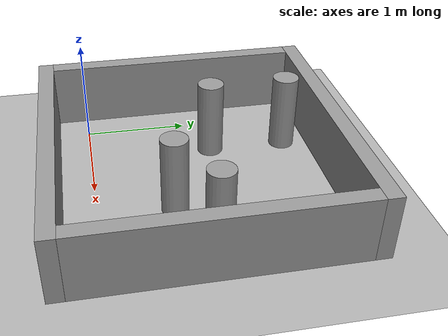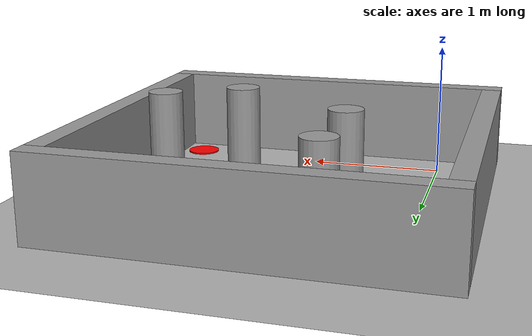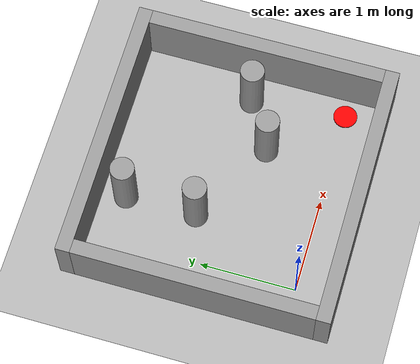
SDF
<?xml version="1.0"?>
<sdf version='1.6'>
  <world name='default'>

    <plugin filename="gz-sim-physics-system" name="gz::sim::systems::Physics"/>
    <plugin filename="gz-sim-user-commands-system" name="gz::sim::systems::UserCommands"/>
    <plugin filename="gz-sim-scene-broadcaster-system" name="gz::sim::systems::SceneBroadcaster"/>
    <plugin filename="gz-sim-sensors-system" name="gz::sim::systems::Sensors">
      <render_engine>ogre2</render_engine>
    </plugin>
    <plugin filename="gz-sim-imu-system" name="gz::sim::systems::Imu"/>

    <light name='Sunlight' type='directional'>
      <cast_shadows>true</cast_shadows>
      <pose>0 0 10 0 0 0</pose>
      <diffuse>0.8 0.8 0.8 1</diffuse>
      <specular>0.1 0.1 0.1 1</specular>
      <attenuation>
        <range>1000</range>
        <constant>0.9</constant>
        <linear>0.01</linear>
        <quadratic>0.001</quadratic>
      </attenuation>
      <direction>-0.2 0.3 -1</direction>
    </light>

    <model name='groundPlane'>
      <static>true</static>
      <pose>1 1 0 0 0 0</pose>
      <link name='groundPlane_link'>
        <collision name='groundPlane_collision'>
          <geometry>
            <plane>
              <normal>0 0 1</normal>
              <size>4 4</size>
            </plane>
          </geometry>
        </collision>

        <visual name='Grid_Horiz_1'>
          <pose>0 -1 0.001 0 0 0</pose> <geometry><box><size>4 0.02 0.001</size></box></geometry>
          <material><ambient>0.7 0.7 0.7 1</ambient><diffuse>0.7 0.7 0.7 1</diffuse></material>
        </visual>
        <visual name='Grid_Horiz_2'>
          <pose>0 0 0.001 0 0 0</pose> <geometry><box><size>4 0.02 0.001</size></box></geometry>
          <material><ambient>0.7 0.7 0.7 1</ambient><diffuse>0.7 0.7 0.7 1</diffuse></material>
        </visual>
        <visual name='Grid_Horiz_3'>
          <pose>0 1 0.001 0 0 0</pose> <geometry><box><size>4 0.02 0.001</size></box></geometry>
          <material><ambient>0.7 0.7 0.7 1</ambient><diffuse>0.7 0.7 0.7 1</diffuse></material>
        </visual>

        <visual name='Grid_Vert_1'>
          <pose>-1 0 0.001 0 0 1.57</pose> <geometry><box><size>4 0.02 0.001</size></box></geometry>
          <material><ambient>0.7 0.7 0.7 1</ambient><diffuse>0.7 0.7 0.7 1</diffuse></material>
        </visual>
        <visual name='Grid_Vert_2'>
          <pose>0 0 0.001 0 0 1.57</pose> <geometry><box><size>4 0.02 0.001</size></box></geometry>
          <material><ambient>0.7 0.7 0.7 1</ambient><diffuse>0.7 0.7 0.7 1</diffuse></material>
        </visual>
        <visual name='Grid_Vert_3'>
          <pose>1 0 0.001 0 0 1.57</pose> <geometry><box><size>4 0.02 0.001</size></box></geometry>
          <material><ambient>0.7 0.7 0.7 1</ambient><diffuse>0.7 0.7 0.7 1</diffuse></material>
        </visual>

        <visual name='groundPlane_Visual'>
            <geometry>
              <plane>
                <normal>0 0 1</normal>
                <size>4 4</size>
              </plane>
            </geometry>
            <material>
              <script>
                <uri>file://media/materials/scripts/gazebo.material</uri>
                <name>Gazebo/White</name>
              </script>
            </material>
        </visual>
      </link>
    </model>

    <gravity>0 0 -9.8</gravity>
    <magnetic_field>6e-06 2.3e-05 -4.2e-05</magnetic_field>
    <atmosphere type='adiabatic'/>

    <physics type="ode">
      <real_time_update_rate>1000.0</real_time_update_rate>
      <max_step_size>0.001</max_step_size>
      <real_time_factor>1</real_time_factor>
      <ode>
        <solver>
          <type>quick</type>
          <iters>150</iters>
          <precon_iters>0</precon_iters>
          <sor>1.4</sor>
          <use_dynamic_moi_rescaling>true</use_dynamic_moi_rescaling>
        </solver>
        <constraints>
          <cfm>0.00001</cfm>
          <erp>0.2</erp>
          <contact_max_correcting_vel>2000.0</contact_max_correcting_vel>
          <contact_surface_layer>0.01</contact_surface_layer>
        </constraints>
      </ode>
    </physics>

    <scene>
      <ambient>0.4 0.4 0.4 1</ambient>
      <background>0.7 0.7 0.7 1</background>
      <shadows>true</shadows>
      <grid>false</grid>
    </scene>

    <gui fullscreen='0'>
      <camera name='user_camera'>
        <pose>0 0 5 0 -1.5707 3.14159</pose>
        <view_controller>orbit</view_controller>
        <projection_type>perspective</projection_type>
      </camera>
    </gui>

    <model name='Walls'>
      <static>true</static>
      <pose>1.5 1.5 0 0 -0 0</pose>
      <link name='Top Wall'>
        <pose>-1.875 -0.55 -0.5 0 -0 1.5708</pose>
        <visual name='Top_Wall_Visual'>
          <pose>0 0 0.75 0 -0 0</pose>
          <geometry>
            <box>
              <size>2.5 0.15 0.75</size>
            </box>
          </geometry>
          <material>
            <script>
              <uri>file://media/materials/scripts/gazebo.material</uri>
              <name>Gazebo/Grey</name>
            </script>
            <double_sided>true</double_sided>
          </material>
          <cast_shadows>true</cast_shadows>
        </visual>
        <collision name='Top_Wall_Collision'>
          <pose>0 0 0.75 0 -0 0</pose>
          <geometry>
            <box>
              <size>2.5 0.15 0.75</size>
            </box>
          </geometry>
        </collision>
      </link>
      <link name='Bottom Wall'>
        <pose>0.775 -0.55 -0.5 0 -0 1.5708</pose>
        <visual name='Bottom_Wall_Visual'>
          <pose>0 0 0.75 0 -0 0</pose>
          <geometry>
            <box>
              <size>2.5 0.15 0.75</size>
            </box>
          </geometry>
          <material>
            <script>
              <uri>file://media/materials/scripts/gazebo.material</uri>
              <name>Gazebo/Grey</name>
            </script>
            <double_sided>true</double_sided>
          </material>
          <cast_shadows>true</cast_shadows>
        </visual>
        <collision name='Bottom_Wall_Collision'>
          <pose>0 0 0.75 0 -0 0</pose>
          <geometry>
            <box>
              <size>2.5 0.15 0.75</size>
            </box>
          </geometry>
        </collision>
      </link>
      <link name='Right Wall'>
        <pose>-0.55 0.775 -0.5 0 -0 3.14159</pose>
        <visual name='Right_Wall_Visual'>
          <pose>0 0 0.75 0 -0 0</pose>
          <geometry>
            <box>
              <size>2.8 0.15 0.75</size>
            </box>
          </geometry>
          <material>
            <script>
              <uri>file://media/materials/scripts/gazebo.material</uri>
              <name>Gazebo/Grey</name>
            </script>
            <double_sided>true</double_sided>
          </material>
          <cast_shadows>true</cast_shadows>
        </visual>
        <collision name='Right_Wall_Collision'>
          <pose>0 0 0.75 0 -0 0</pose>
          <geometry>
            <box>
              <size>2.8 0.15 0.75</size>
            </box>
          </geometry>
        </collision>
      </link>
      <link name='Left Wall'>
        <pose>-0.55 -1.875 -0.5 0 -0 3.14159</pose>
        <visual name='Left_Wall_Visual'>
          <pose>0 0 0.75 0 -0 0</pose>
          <geometry>
            <box>
              <size>2.8 0.15 0.75</size>
            </box>
          </geometry>
          <material>
            <script>
              <uri>file://media/materials/scripts/gazebo.material</uri>
              <name>Gazebo/Grey</name>
            </script>
            <double_sided>true</double_sided>
          </material>
          <cast_shadows>true</cast_shadows>
        </visual>
        <collision name='Left_Wall_Collision'>
          <pose>0 0 0.75 0 -0 0</pose>
          <geometry>
            <box>
              <size>2.8 0.15 0.75</size>
            </box>
          </geometry>
        </collision>
      </link>
    </model>

    <model name='Pillars'>
      <static>true</static>
      <pose>2.1037 1.06319 0.624991 0 0 -9e-06</pose>
      <link name='Pillar_T1'>
        <pose>-1.605 0.135 -0.25 0 -0 0</pose>
        <visual name='Pillar_T1_Visual'>
          <geometry>
            <cylinder>
              <radius>0.125</radius>
              <length>0.75</length>
            </cylinder>
          </geometry>
          <material>
            <script>
              <name>Gazebo/Grey</name>
              <uri>file://media/materials/scripts/gazebo.material</uri>
            </script>
          </material>
        </visual>
        <collision name='Pillar_T1_Collision'>
          <geometry>
            <cylinder>
              <radius>0.125</radius>
              <length>0.75</length>
            </cylinder>
          </geometry>
        </collision>
      </link>
      <link name='Pillar_T2'>
        <pose>-1.605 0.885 -0.25 0 -0 9e-06</pose>
        <visual name='Pillar_T2_Visual'>
          <geometry>
            <cylinder>
              <radius>0.125</radius>
              <length>0.75</length>
            </cylinder>
          </geometry>
          <material>
            <script>
              <name>Gazebo/Grey</name>
              <uri>file://media/materials/scripts/gazebo.material</uri>
            </script>
          </material>
        </visual>
        <collision name='Pillar_T2_Collision'>
          <geometry>
            <cylinder>
              <radius>0.125</radius>
              <length>0.75</length>
            </cylinder>
          </geometry>
        </collision>
      </link>
      <link name='Pillar_T3'>
        <pose>-0.705 -0.365 -0.25 0 -0 9e-06</pose>
        <visual name='Pillar_T3_Visual'>
          <geometry>
            <cylinder>
              <radius>0.125</radius>
              <length>0.75</length>
            </cylinder>
          </geometry>
          <material>
            <script>
              <name>Gazebo/Grey</name>
              <uri>file://media/materials/scripts/gazebo.material</uri>
            </script>
          </material>
        </visual>
        <collision name='Pillar_T3_Collision'>
          <geometry>
            <cylinder>
              <radius>0.125</radius>
              <length>0.75</length>
            </cylinder>
          </geometry>
        </collision>
      </link>
      <link name='Pillar_T4'>
        <pose>-0.205 -0.065 -0.25 0 -0 9e-06</pose>
        <visual name='Pillar_T4_Visual'>
          <geometry>
            <cylinder>
              <radius>0.125</radius>
              <length>0.75</length>
            </cylinder>
          </geometry>
          <material>
            <script>
              <name>Gazebo/Grey</name>
              <uri>file://media/materials/scripts/gazebo.material</uri>
            </script>
          </material>
        </visual>
        <collision name='Pillar_T4_Collision'>
          <geometry>
            <cylinder>
              <radius>0.125</radius>
              <length>0.75</length>
            </cylinder>
          </geometry>
        </collision>
      </link>
    </model>

    <model name='Final Marker'>
      <static>true</static>
      <pose>2.0 0.0 0.025 0 0 0</pose>
      <link name='Final_Marker_Link'>
        <visual name='Final_Marker_Visual'>
          <geometry>
            <cylinder>
              <radius>0.125</radius>
              <length>0.01</length>
            </cylinder>
          </geometry>
          <material>
            <ambient>1 0 0 1</ambient>
            <diffuse>1 0 0 1</diffuse>
          </material>
        </visual>
        </link>
    </model>
  </world>
</sdf>
